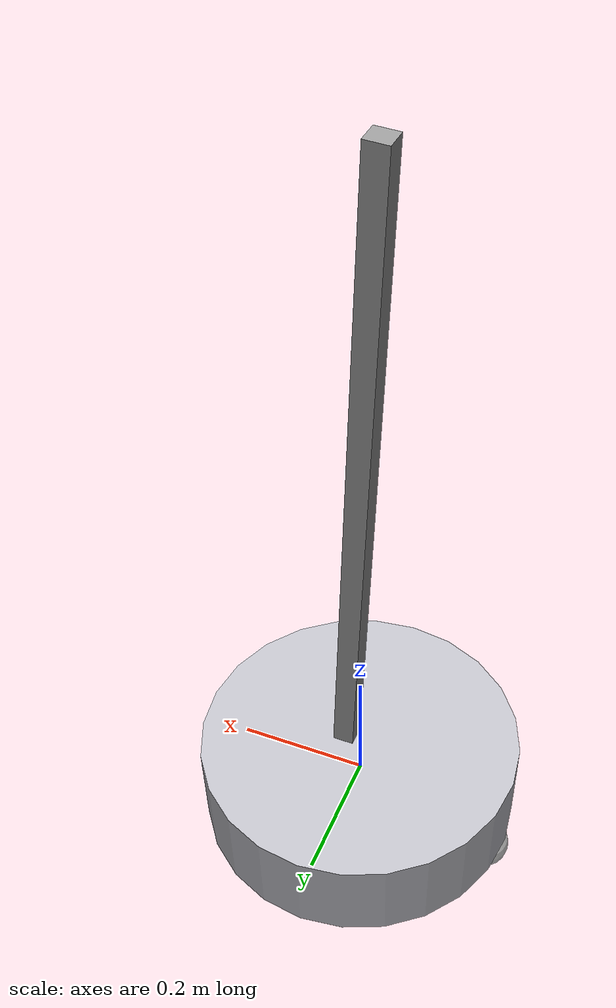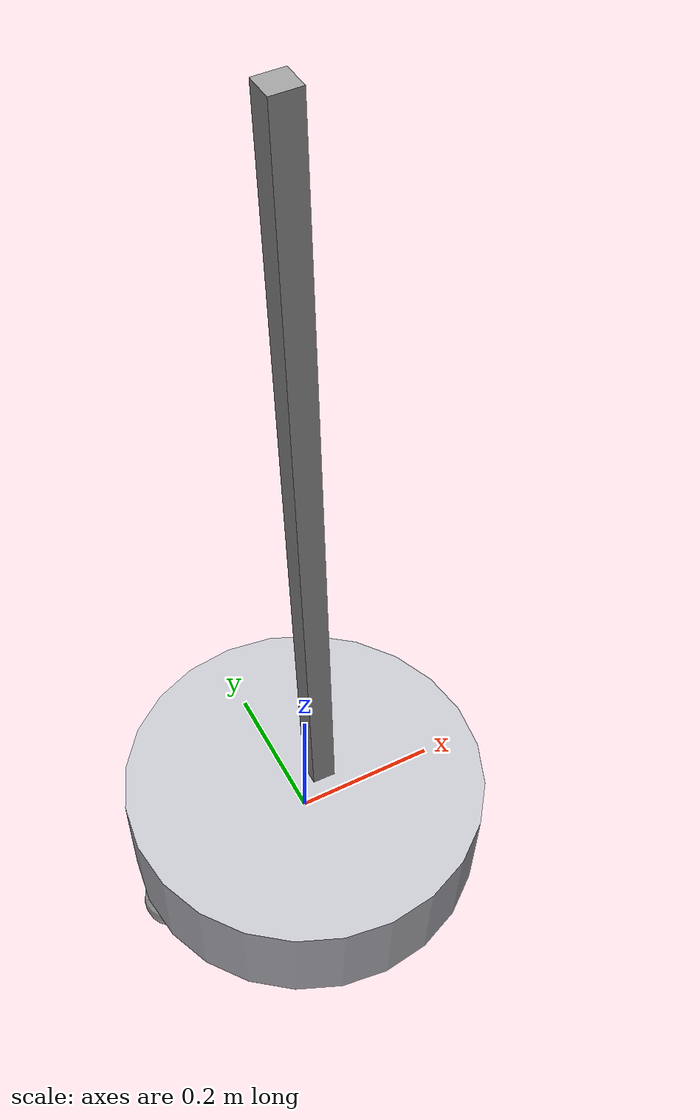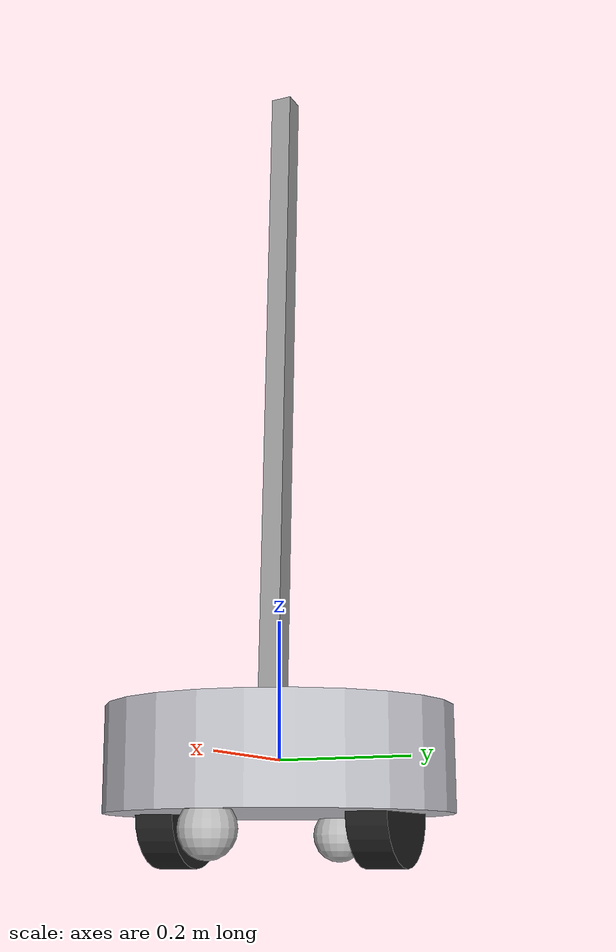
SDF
<?xml version='1.0'?>
<sdf version='1.6'>
  <model name='base-bill-haste'>
    <link name='base_link'>
      <pose frame=''>0 0 0 0 -0 0</pose>
      <inertial>
        <pose frame=''>0 0 0.1 0 -0 0</pose>
        <mass>5</mass>
        <inertia>
          <ixx>0.0395417</ixx>
          <ixy>0</ixy>
          <ixz>0</ixz>
          <iyy>0.106208</iyy>
          <iyz>0</iyz>
          <izz>0.106208</izz>
        </inertia>
      </inertial>
      <gravity>1</gravity>
      <velocity_decay/>
      <self_collide>0</self_collide>
      <enable_wind>0</enable_wind>
      <kinematic>0</kinematic>
      <visual name='base_link_visual'>
        <pose frame=''>0 0 0 0 -0 0</pose>
        <geometry>
          <cylinder>
            <length>0.15</length>
            <radius>0.25</radius>
          </cylinder>
        </geometry>
        <material>
          <script>
            <name>Gazebo/Silver</name>
            <uri>file://media/materials/scripts/gazebo.material</uri>
          </script>
          <emissive>0 0 0 1</emissive>
        </material>
        <transparency>0</transparency>
        <cast_shadows>1</cast_shadows>
      </visual>
      <visual name='base_link_fixed_joint_lump__caster_front_visual_visual_1'>
        <pose frame=''>0.216 0 -0.1 0 -0 0</pose>
        <geometry>
          <sphere>
            <radius>0.04</radius>
          </sphere>
        </geometry>
        <transparency>0</transparency>
        <cast_shadows>1</cast_shadows>
        <material>
          <emissive>0 0 0 1</emissive>
        </material>
      </visual>
      <visual name='base_link_fixed_joint_lump__caster_back_visual_visual_2'>
        <pose frame=''>-0.216 0 -0.1 0 -0 0</pose>
        <geometry>
          <sphere>
            <radius>0.04</radius>
          </sphere>
        </geometry>
        <transparency>0</transparency>
        <cast_shadows>1</cast_shadows>
        <material>
          <emissive>0 0 0 1</emissive>
        </material>
      </visual>
      <collision name='base_link_fixed_joint_lump__colission_chassis_collision'>
        <laser_retro>0</laser_retro>
        <max_contacts>10</max_contacts>
        <pose frame=''>0 0 0 0 -0 0</pose>
        <geometry>
          <cylinder>
            <radius>0.25</radius>
            <length>0.15</length>
          </cylinder>
        </geometry>
        <surface>
          <friction>
            <ode>
              <mu>1</mu>
              <mu2>1</mu2>
              <fdir1>0 0 0</fdir1>
              <slip1>0</slip1>
              <slip2>0</slip2>
            </ode>
            <torsional>
              <coefficient>1</coefficient>
              <patch_radius>0</patch_radius>
              <surface_radius>0</surface_radius>
              <use_patch_radius>1</use_patch_radius>
              <ode>
                <slip>0</slip>
              </ode>
            </torsional>
          </friction>
          <bounce>
            <restitution_coefficient>0</restitution_coefficient>
            <threshold>1e+06</threshold>
          </bounce>
          <contact>
            <collide_without_contact>0</collide_without_contact>
            <collide_without_contact_bitmask>1</collide_without_contact_bitmask>
            <collide_bitmask>1</collide_bitmask>
            <ode>
              <soft_cfm>0</soft_cfm>
              <soft_erp>0.2</soft_erp>
              <kp>1e+13</kp>
              <kd>1</kd>
              <max_vel>0.01</max_vel>
              <min_depth>0</min_depth>
            </ode>
            <bullet>
              <split_impulse>1</split_impulse>
              <split_impulse_penetration_threshold>-0.01</split_impulse_penetration_threshold>
              <soft_cfm>0</soft_cfm>
              <soft_erp>0.2</soft_erp>
              <kp>1e+13</kp>
              <kd>1</kd>
            </bullet>
          </contact>
        </surface>
      </collision>
      <collision name='base_link_fixed_joint_lump__caster_front_wheel_collision_1'>
        <laser_retro>0</laser_retro>
        <max_contacts>10</max_contacts>
        <pose frame=''>0.216 0 -0.1 0 -0 0</pose>
        <geometry>
          <sphere>
            <radius>0.04</radius>
          </sphere>
        </geometry>
        <surface>
          <friction>
            <ode>
              <mu>1</mu>
              <mu2>1</mu2>
              <fdir1>0 0 0</fdir1>
              <slip1>0</slip1>
              <slip2>0</slip2>
            </ode>
            <torsional>
              <coefficient>1</coefficient>
              <patch_radius>0</patch_radius>
              <surface_radius>0</surface_radius>
              <use_patch_radius>1</use_patch_radius>
              <ode>
                <slip>0</slip>
              </ode>
            </torsional>
          </friction>
          <bounce>
            <restitution_coefficient>0</restitution_coefficient>
            <threshold>1e+06</threshold>
          </bounce>
          <contact>
            <collide_without_contact>0</collide_without_contact>
            <collide_without_contact_bitmask>1</collide_without_contact_bitmask>
            <collide_bitmask>1</collide_bitmask>
            <ode>
              <soft_cfm>0</soft_cfm>
              <soft_erp>0.2</soft_erp>
              <kp>1e+13</kp>
              <kd>1</kd>
              <max_vel>0.01</max_vel>
              <min_depth>0</min_depth>
            </ode>
            <bullet>
              <split_impulse>1</split_impulse>
              <split_impulse_penetration_threshold>-0.01</split_impulse_penetration_threshold>
              <soft_cfm>0</soft_cfm>
              <soft_erp>0.2</soft_erp>
              <kp>1e+13</kp>
              <kd>1</kd>
            </bullet>
          </contact>
        </surface>
      </collision>
      <collision name='base_link_fixed_joint_lump__caster_back_wheel_collision_2'>
        <laser_retro>0</laser_retro>
        <max_contacts>10</max_contacts>
        <pose frame=''>-0.216 0 -0.1 0 -0 0</pose>
        <geometry>
          <sphere>
            <radius>0.04</radius>
          </sphere>
        </geometry>
        <surface>
          <friction>
            <ode>
              <mu>1</mu>
              <mu2>1</mu2>
              <fdir1>0 0 0</fdir1>
              <slip1>0</slip1>
              <slip2>0</slip2>
            </ode>
            <torsional>
              <coefficient>1</coefficient>
              <patch_radius>0</patch_radius>
              <surface_radius>0</surface_radius>
              <use_patch_radius>1</use_patch_radius>
              <ode>
                <slip>0</slip>
              </ode>
            </torsional>
          </friction>
          <bounce>
            <restitution_coefficient>0</restitution_coefficient>
            <threshold>1e+06</threshold>
          </bounce>
          <contact>
            <collide_without_contact>0</collide_without_contact>
            <collide_without_contact_bitmask>1</collide_without_contact_bitmask>
            <collide_bitmask>1</collide_bitmask>
            <ode>
              <soft_cfm>0</soft_cfm>
              <soft_erp>0.2</soft_erp>
              <kp>1e+13</kp>
              <kd>1</kd>
              <max_vel>0.01</max_vel>
              <min_depth>0</min_depth>
            </ode>
            <bullet>
              <split_impulse>1</split_impulse>
              <split_impulse_penetration_threshold>-0.01</split_impulse_penetration_threshold>
              <soft_cfm>0</soft_cfm>
              <soft_erp>0.2</soft_erp>
              <kp>1e+13</kp>
              <kd>1</kd>
            </bullet>
          </contact>
        </surface>
      </collision>
    </link>
    <link name='link_0'>
      <inertial>
        <mass>1</mass>
        <inertia>
          <ixx>0.166667</ixx>
          <ixy>0</ixy>
          <ixz>0</ixz>
          <iyy>0.166667</iyy>
          <iyz>0</iyz>
          <izz>0.166667</izz>
        </inertia>
        <pose frame=''>1 0 0 0 -0 0</pose>
      </inertial>
      <pose frame=''>0 -0 0.558253 0.000545 -0.046426 -0.011604</pose>
      <gravity>1</gravity>
      <self_collide>0</self_collide>
      <kinematic>0</kinematic>
      <enable_wind>0</enable_wind>
      <visual name='visual'>
        <pose frame=''>0 0 0 0 -0 0</pose>
        <geometry>
          <box>
            <size>0.032 0.032 1</size>
          </box>
        </geometry>
        <material>
          <lighting>1</lighting>
          <script>
            <uri>file://media/materials/scripts/gazebo.material</uri>
            <name>Gazebo/Grey</name>
          </script>
          <shader type='vertex'>
            <normal_map>__default__</normal_map>
          </shader>
          <ambient>0.3 0.3 0.3 1</ambient>
          <diffuse>0.7 0.7 0.7 1</diffuse>
          <specular>0.01 0.01 0.01 1</specular>
          <emissive>0 0 0 1</emissive>
        </material>
        <transparency>0</transparency>
        <cast_shadows>1</cast_shadows>
      </visual>
      <collision name='collision'>
        <laser_retro>0</laser_retro>
        <max_contacts>10</max_contacts>
        <pose frame=''>0 0 0 0 -0 0</pose>
        <geometry>
          <box>
            <size>0.032 0.032 1</size>
          </box>
        </geometry>
        <surface>
          <friction>
            <ode>
              <mu>1</mu>
              <mu2>1</mu2>
              <fdir1>0 0 0</fdir1>
              <slip1>0</slip1>
              <slip2>0</slip2>
            </ode>
            <torsional>
              <coefficient>1</coefficient>
              <patch_radius>0</patch_radius>
              <surface_radius>0</surface_radius>
              <use_patch_radius>1</use_patch_radius>
              <ode>
                <slip>0</slip>
              </ode>
            </torsional>
          </friction>
          <bounce>
            <restitution_coefficient>0</restitution_coefficient>
            <threshold>1e+06</threshold>
          </bounce>
          <contact>
            <collide_without_contact>0</collide_without_contact>
            <collide_without_contact_bitmask>1</collide_without_contact_bitmask>
            <collide_bitmask>1</collide_bitmask>
            <ode>
              <soft_cfm>0</soft_cfm>
              <soft_erp>0.2</soft_erp>
              <kp>1e+13</kp>
              <kd>1</kd>
              <max_vel>0.01</max_vel>
              <min_depth>0</min_depth>
            </ode>
            <bullet>
              <split_impulse>1</split_impulse>
              <split_impulse_penetration_threshold>-0.01</split_impulse_penetration_threshold>
              <soft_cfm>0</soft_cfm>
              <soft_erp>0.2</soft_erp>
              <kp>1e+13</kp>
              <kd>1</kd>
            </bullet>
          </contact>
        </surface>
      </collision>
    </link>
    <link name='link_left_wheel'>
      <pose frame=''>0 -0.162 -0.075 0 -0 0</pose>
      <inertial>
        <pose frame=''>0 0 0 -0 1.5707 1.5707</pose>
        <mass>0.2</mass>
        <inertia>
          <ixx>0.000526667</ixx>
          <ixy>0</ixy>
          <ixz>0</ixz>
          <iyy>0.000526667</iyy>
          <iyz>0</iyz>
          <izz>0.001</izz>
        </inertia>
      </inertial>
      <gravity>1</gravity>
      <velocity_decay/>
      <self_collide>0</self_collide>
      <enable_wind>0</enable_wind>
      <kinematic>0</kinematic>
      <visual name='link_left_wheel_visual_visual'>
        <pose frame=''>0 0 0 -3.13685 1.57079 -1.56615</pose>
        <geometry>
          <cylinder>
            <length>0.06</length>
            <radius>0.075</radius>
          </cylinder>
        </geometry>
        <material>
          <script>
            <name>Gazebo/Black</name>
            <uri>file://media/materials/scripts/gazebo.material</uri>
          </script>
        </material>
        <transparency>0</transparency>
        <cast_shadows>1</cast_shadows>
      </visual>
      <collision name='link_left_wheel_collision_collision'>
        <laser_retro>0</laser_retro>
        <max_contacts>10</max_contacts>
        <pose frame=''>0 0 0 3.14159 1.57079 -1.57089</pose>
        <geometry>
          <cylinder>
            <radius>0.075</radius>
            <length>0.06</length>
          </cylinder>
        </geometry>
        <surface>
          <friction>
            <ode>
              <mu>1</mu>
              <mu2>1</mu2>
              <fdir1>0 0 0</fdir1>
              <slip1>0</slip1>
              <slip2>0</slip2>
            </ode>
            <torsional>
              <coefficient>1</coefficient>
              <patch_radius>0</patch_radius>
              <surface_radius>0</surface_radius>
              <use_patch_radius>1</use_patch_radius>
              <ode>
                <slip>0</slip>
              </ode>
            </torsional>
          </friction>
          <bounce>
            <restitution_coefficient>0</restitution_coefficient>
            <threshold>1e+06</threshold>
          </bounce>
          <contact>
            <collide_without_contact>0</collide_without_contact>
            <collide_without_contact_bitmask>1</collide_without_contact_bitmask>
            <collide_bitmask>1</collide_bitmask>
            <ode>
              <soft_cfm>0</soft_cfm>
              <soft_erp>0.2</soft_erp>
              <kp>1e+13</kp>
              <kd>1</kd>
              <max_vel>0.01</max_vel>
              <min_depth>0</min_depth>
            </ode>
            <bullet>
              <split_impulse>1</split_impulse>
              <split_impulse_penetration_threshold>-0.01</split_impulse_penetration_threshold>
              <soft_cfm>0</soft_cfm>
              <soft_erp>0.2</soft_erp>
              <kp>1e+13</kp>
              <kd>1</kd>
            </bullet>
          </contact>
        </surface>
      </collision>
    </link>
    <link name='link_right_wheel'>
      <pose frame=''>-0 0.162 -0.075 0 -0 0</pose>
      <inertial>
        <pose frame=''>0 0 0 0 1.5707 0</pose>
        <mass>0.2</mass>
        <inertia>
          <ixx>0.000526667</ixx>
          <ixy>0</ixy>
          <ixz>0</ixz>
          <iyy>0.000526667</iyy>
          <iyz>0</iyz>
          <izz>0.001</izz>
        </inertia>
      </inertial>
      <gravity>1</gravity>
      <velocity_decay/>
      <self_collide>0</self_collide>
      <enable_wind>0</enable_wind>
      <kinematic>0</kinematic>
      <visual name='link_right_wheel_visual_visual'>
        <pose frame=''>0 0 0 -3.13685 1.57079 -1.56615</pose>
        <geometry>
          <cylinder>
            <length>0.06</length>
            <radius>0.075</radius>
          </cylinder>
        </geometry>
        <material>
          <script>
            <name>Gazebo/Black</name>
            <uri>file://media/materials/scripts/gazebo.material</uri>
          </script>
        </material>
        <transparency>0</transparency>
        <cast_shadows>1</cast_shadows>
      </visual>
      <collision name='link_right_wheel_collision_collision'>
        <laser_retro>0</laser_retro>
        <max_contacts>10</max_contacts>
        <pose frame=''>0 0 0 3.14159 1.57079 -1.57089</pose>
        <geometry>
          <cylinder>
            <radius>0.075</radius>
            <length>0.06</length>
          </cylinder>
        </geometry>
        <surface>
          <friction>
            <ode>
              <mu>1</mu>
              <mu2>1</mu2>
              <fdir1>0 0 0</fdir1>
              <slip1>0</slip1>
              <slip2>0</slip2>
            </ode>
            <torsional>
              <coefficient>1</coefficient>
              <patch_radius>0</patch_radius>
              <surface_radius>0</surface_radius>
              <use_patch_radius>1</use_patch_radius>
              <ode>
                <slip>0</slip>
              </ode>
            </torsional>
          </friction>
          <bounce>
            <restitution_coefficient>0</restitution_coefficient>
            <threshold>1e+06</threshold>
          </bounce>
          <contact>
            <collide_without_contact>0</collide_without_contact>
            <collide_without_contact_bitmask>1</collide_without_contact_bitmask>
            <collide_bitmask>1</collide_bitmask>
            <ode>
              <soft_cfm>0</soft_cfm>
              <soft_erp>0.2</soft_erp>
              <kp>1e+13</kp>
              <kd>1</kd>
              <max_vel>0.01</max_vel>
              <min_depth>0</min_depth>
            </ode>
            <bullet>
              <split_impulse>1</split_impulse>
              <split_impulse_penetration_threshold>-0.01</split_impulse_penetration_threshold>
              <soft_cfm>0</soft_cfm>
              <soft_erp>0.2</soft_erp>
              <kp>1e+13</kp>
              <kd>1</kd>
            </bullet>
          </contact>
        </surface>
      </collision>
    </link>
    <joint name='base_link_JOINT_0' type='fixed'>
      <parent>base_link</parent>
      <child>link_0</child>
      <pose frame=''>0 0 0 0 -0 0</pose>
      <physics>
        <ode>
          <limit>
            <cfm>0</cfm>
            <erp>0.2</erp>
          </limit>
          <suspension>
            <cfm>0</cfm>
            <erp>0.2</erp>
          </suspension>
        </ode>
      </physics>
    </joint>
    <joint name='joint_left_wheel' type='revolute'>
      <parent>base_link</parent>
      <child>link_left_wheel</child>
      <pose frame=''>0 0 0 0 -0 0</pose>
      <axis>
        <xyz>0 1 0</xyz>
        <use_parent_model_frame>1</use_parent_model_frame>
        <limit>
          <lower>-1e+16</lower>
          <upper>1e+16</upper>
          <effort>-1</effort>
          <velocity>-1</velocity>
        </limit>
        <dynamics>
          <spring_reference>0</spring_reference>
          <spring_stiffness>0</spring_stiffness>
          <damping>0</damping>
          <friction>0</friction>
        </dynamics>
      </axis>
      <physics>
        <ode>
          <limit>
            <cfm>0</cfm>
            <erp>0.2</erp>
          </limit>
          <suspension>
            <cfm>0</cfm>
            <erp>0.2</erp>
          </suspension>
        </ode>
      </physics>
    </joint>
    <joint name='joint_right_wheel' type='revolute'>
      <parent>base_link</parent>
      <child>link_right_wheel</child>
      <pose frame=''>0 0 0 0 -0 0</pose>
      <axis>
        <xyz>0 1 0</xyz>
        <use_parent_model_frame>1</use_parent_model_frame>
        <limit>
          <lower>-1e+16</lower>
          <upper>1e+16</upper>
          <effort>-1</effort>
          <velocity>-1</velocity>
        </limit>
        <dynamics>
          <spring_reference>0</spring_reference>
          <spring_stiffness>0</spring_stiffness>
          <damping>0</damping>
          <friction>0</friction>
        </dynamics>
      </axis>
      <physics>
        <ode>
          <limit>
            <cfm>0</cfm>
            <erp>0.2</erp>
          </limit>
          <suspension>
            <cfm>0</cfm>
            <erp>0.2</erp>
          </suspension>
        </ode>
      </physics>
    </joint>
    <static>0</static>
    <allow_auto_disable>1</allow_auto_disable>
    <plugin name='differential_drive_controller' filename='libgazebo_ros_diff_drive.so'>
      <legacyMode>0</legacyMode>
      <alwaysOn>1</alwaysOn>
      <updateRate>20</updateRate>
      <leftJoint>joint_left_wheel</leftJoint>
      <rightJoint>joint_right_wheel</rightJoint>
      <wheelSeparation>0.38</wheelSeparation>
      <wheelDiameter>0.15</wheelDiameter>
      <torque>0.1</torque>
      <commandTopic>cmd_vel</commandTopic>
      <odometryTopic>odom</odometryTopic>
      <odometryFrame>odom</odometryFrame>
      <robotBaseFrame>base_link</robotBaseFrame>
      <robotNamespace>/</robotNamespace>
    </plugin>
  </model>
</sdf>
